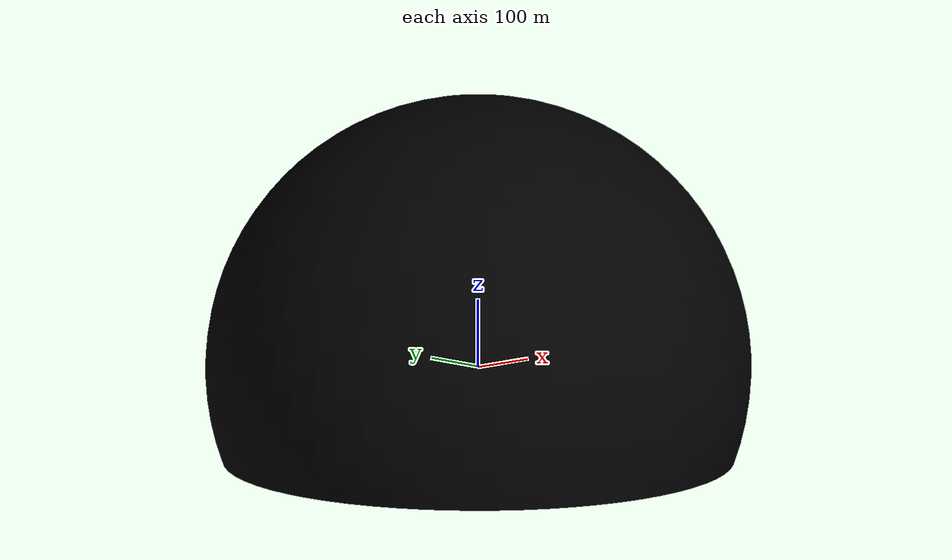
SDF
<?xml version="1.0" ?>
<sdf version="1.9">
  <model name="sky_dome_night">
    <static>true</static>
    <link name="link">
      <visual name="visual">
        <cast_shadows>false</cast_shadows>
        <geometry><mesh><uri>model://sky_dome/meshes/dome.dae</uri><scale>400 400 400</scale></mesh></geometry>
        <material>
          <ambient>0 0 0 1</ambient>
          <diffuse>0 0 0 1</diffuse>
          <specular>0 0 0 1</specular>
          <emissive>1 1 1 1</emissive>
          <pbr>
            <metal>
              <albedo_map>model://sky_dome/materials/textures/sky_night.jpg</albedo_map>
              <emissive_map>model://sky_dome/materials/textures/sky_night.jpg</emissive_map>
              <roughness>1</roughness>
              <metalness>0</metalness>
            </metal>
          </pbr>
        </material>
        <!-- Clear sky is cold to a thermal camera. -->
        <plugin filename="gz-sim-thermal-system" name="gz::sim::systems::Thermal">
          <temperature>240.0</temperature>
        </plugin>
      </visual>
    </link>
  </model>
</sdf>
